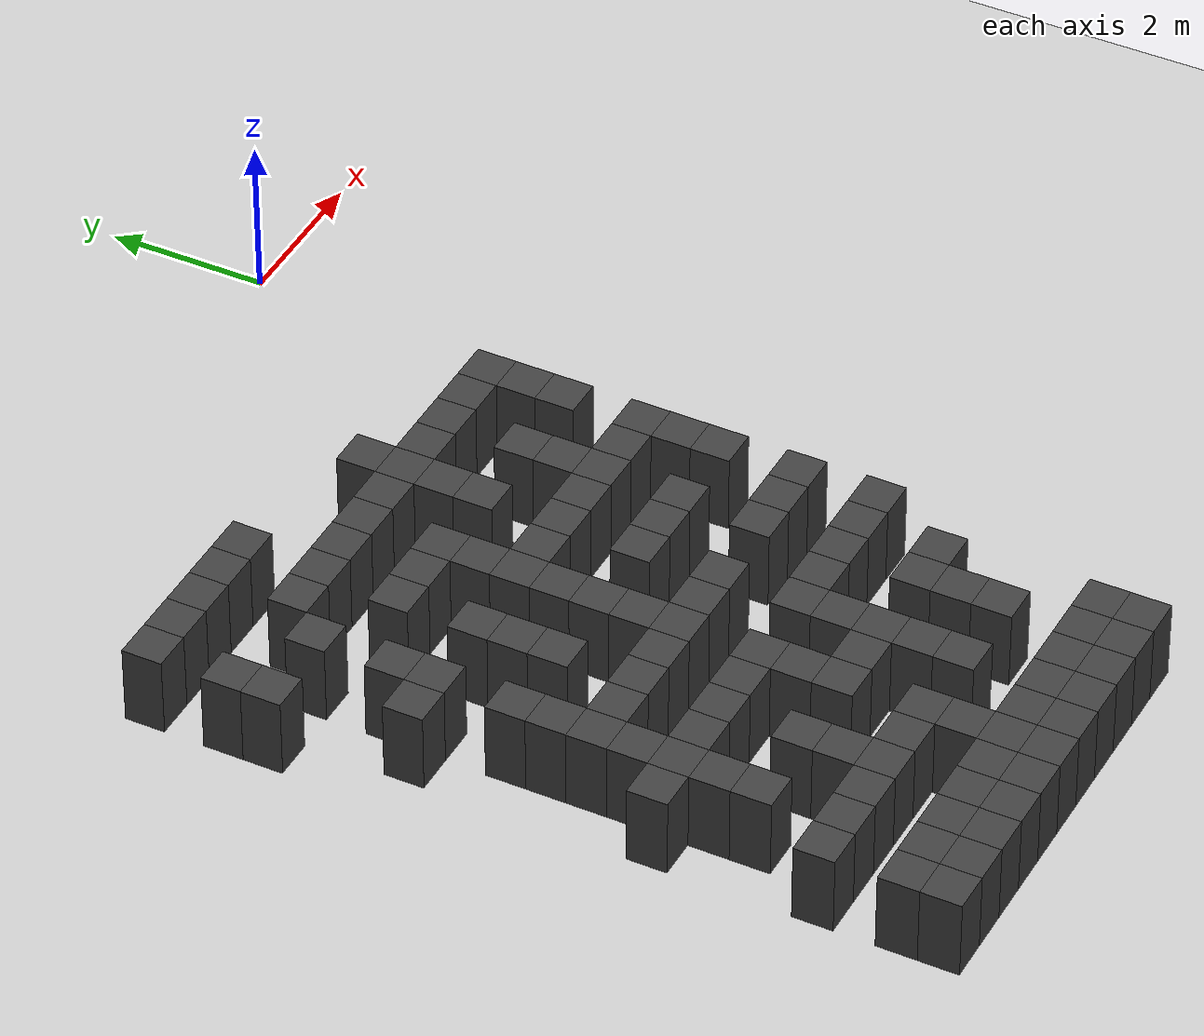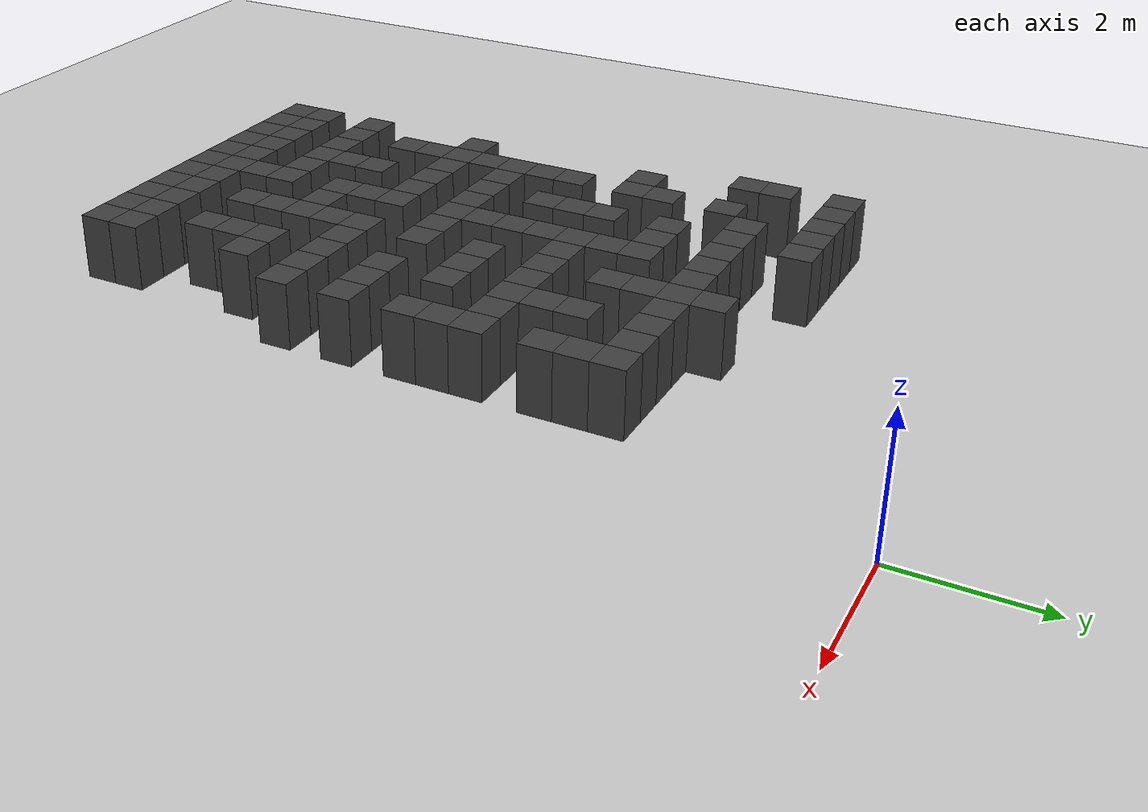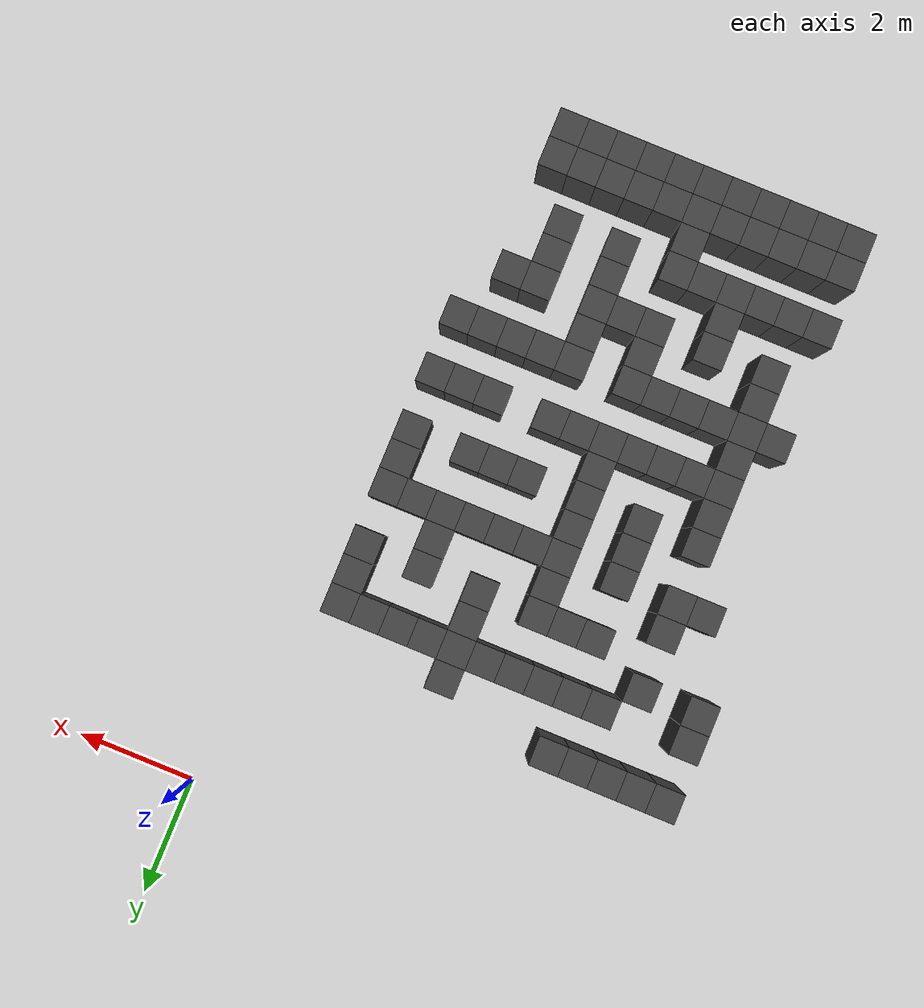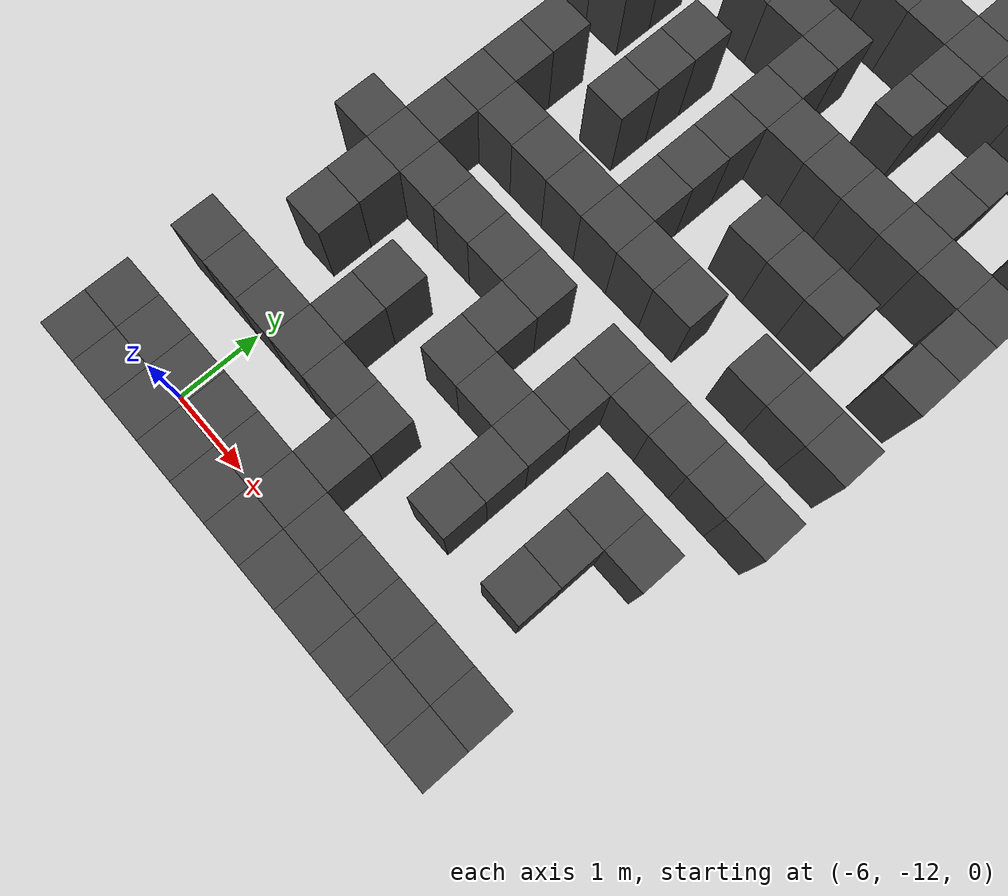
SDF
<sdf version="1.7">
 <world name="map_18505">
  <model name="ground_plane">
   <static>true</static>
   <link name="link">
    <collision name="collision">
     <geometry><plane><normal>0 0 1</normal><size>200 200</size></plane></geometry>
    </collision>
    <visual name="visual">
     <geometry><plane><normal>0 0 1</normal><size>200 200</size></plane></geometry>
     <material><ambient>0.8 0.8 0.8 1</ambient><diffuse>0.8 0.8 0.8 1</diffuse></material>
    </visual>
   </link>
  </model>
  <model name="maze_environment">
   <static>true</static>
   <link name="wall_767">
    <pose>-7.250 -2.750 0.500 0 0 0</pose>
    <collision name="col"><geometry><box><size>0.5 0.5 1.0</size></box></geometry></collision>
    <visual name="vis">
     <geometry><box><size>0.5 0.5 1.0</size></box></geometry>
     <material><ambient>0.15 0.15 0.15 1</ambient><diffuse>0.25 0.25 0.25 1</diffuse></material>
    </visual>
   </link>
   <link name="wall_768">
    <pose>-6.750 -2.750 0.500 0 0 0</pose>
    <collision name="col"><geometry><box><size>0.5 0.5 1.0</size></box></geometry></collision>
    <visual name="vis">
     <geometry><box><size>0.5 0.5 1.0</size></box></geometry>
     <material><ambient>0.15 0.15 0.15 1</ambient><diffuse>0.25 0.25 0.25 1</diffuse></material>
    </visual>
   </link>
   <link name="wall_769">
    <pose>-6.250 -2.750 0.500 0 0 0</pose>
    <collision name="col"><geometry><box><size>0.5 0.5 1.0</size></box></geometry></collision>
    <visual name="vis">
     <geometry><box><size>0.5 0.5 1.0</size></box></geometry>
     <material><ambient>0.15 0.15 0.15 1</ambient><diffuse>0.25 0.25 0.25 1</diffuse></material>
    </visual>
   </link>
   <link name="wall_770">
    <pose>-5.750 -2.750 0.500 0 0 0</pose>
    <collision name="col"><geometry><box><size>0.5 0.5 1.0</size></box></geometry></collision>
    <visual name="vis">
     <geometry><box><size>0.5 0.5 1.0</size></box></geometry>
     <material><ambient>0.15 0.15 0.15 1</ambient><diffuse>0.25 0.25 0.25 1</diffuse></material>
    </visual>
   </link>
   <link name="wall_771">
    <pose>-5.250 -2.750 0.500 0 0 0</pose>
    <collision name="col"><geometry><box><size>0.5 0.5 1.0</size></box></geometry></collision>
    <visual name="vis">
     <geometry><box><size>0.5 0.5 1.0</size></box></geometry>
     <material><ambient>0.15 0.15 0.15 1</ambient><diffuse>0.25 0.25 0.25 1</diffuse></material>
    </visual>
   </link>
   <link name="wall_802">
    <pose>-3.250 -3.250 0.500 0 0 0</pose>
    <collision name="col"><geometry><box><size>0.5 0.5 1.0</size></box></geometry></collision>
    <visual name="vis">
     <geometry><box><size>0.5 0.5 1.0</size></box></geometry>
     <material><ambient>0.15 0.15 0.15 1</ambient><diffuse>0.25 0.25 0.25 1</diffuse></material>
    </visual>
   </link>
   <link name="wall_817">
    <pose>-7.250 -3.750 0.500 0 0 0</pose>
    <collision name="col"><geometry><box><size>0.5 0.5 1.0</size></box></geometry></collision>
    <visual name="vis">
     <geometry><box><size>0.5 0.5 1.0</size></box></geometry>
     <material><ambient>0.15 0.15 0.15 1</ambient><diffuse>0.25 0.25 0.25 1</diffuse></material>
    </visual>
   </link>
   <link name="wall_818">
    <pose>-5.750 -3.750 0.500 0 0 0</pose>
    <collision name="col"><geometry><box><size>0.5 0.5 1.0</size></box></geometry></collision>
    <visual name="vis">
     <geometry><box><size>0.5 0.5 1.0</size></box></geometry>
     <material><ambient>0.15 0.15 0.15 1</ambient><diffuse>0.25 0.25 0.25 1</diffuse></material>
    </visual>
   </link>
   <link name="wall_819">
    <pose>-5.250 -3.750 0.500 0 0 0</pose>
    <collision name="col"><geometry><box><size>0.5 0.5 1.0</size></box></geometry></collision>
    <visual name="vis">
     <geometry><box><size>0.5 0.5 1.0</size></box></geometry>
     <material><ambient>0.15 0.15 0.15 1</ambient><diffuse>0.25 0.25 0.25 1</diffuse></material>
    </visual>
   </link>
   <link name="wall_820">
    <pose>-4.750 -3.750 0.500 0 0 0</pose>
    <collision name="col"><geometry><box><size>0.5 0.5 1.0</size></box></geometry></collision>
    <visual name="vis">
     <geometry><box><size>0.5 0.5 1.0</size></box></geometry>
     <material><ambient>0.15 0.15 0.15 1</ambient><diffuse>0.25 0.25 0.25 1</diffuse></material>
    </visual>
   </link>
   <link name="wall_821">
    <pose>-4.250 -3.750 0.500 0 0 0</pose>
    <collision name="col"><geometry><box><size>0.5 0.5 1.0</size></box></geometry></collision>
    <visual name="vis">
     <geometry><box><size>0.5 0.5 1.0</size></box></geometry>
     <material><ambient>0.15 0.15 0.15 1</ambient><diffuse>0.25 0.25 0.25 1</diffuse></material>
    </visual>
   </link>
   <link name="wall_822">
    <pose>-3.750 -3.750 0.500 0 0 0</pose>
    <collision name="col"><geometry><box><size>0.5 0.5 1.0</size></box></geometry></collision>
    <visual name="vis">
     <geometry><box><size>0.5 0.5 1.0</size></box></geometry>
     <material><ambient>0.15 0.15 0.15 1</ambient><diffuse>0.25 0.25 0.25 1</diffuse></material>
    </visual>
   </link>
   <link name="wall_823">
    <pose>-3.250 -3.750 0.500 0 0 0</pose>
    <collision name="col"><geometry><box><size>0.5 0.5 1.0</size></box></geometry></collision>
    <visual name="vis">
     <geometry><box><size>0.5 0.5 1.0</size></box></geometry>
     <material><ambient>0.15 0.15 0.15 1</ambient><diffuse>0.25 0.25 0.25 1</diffuse></material>
    </visual>
   </link>
   <link name="wall_824">
    <pose>-2.750 -3.750 0.500 0 0 0</pose>
    <collision name="col"><geometry><box><size>0.5 0.5 1.0</size></box></geometry></collision>
    <visual name="vis">
     <geometry><box><size>0.5 0.5 1.0</size></box></geometry>
     <material><ambient>0.15 0.15 0.15 1</ambient><diffuse>0.25 0.25 0.25 1</diffuse></material>
    </visual>
   </link>
   <link name="wall_825">
    <pose>-2.250 -3.750 0.500 0 0 0</pose>
    <collision name="col"><geometry><box><size>0.5 0.5 1.0</size></box></geometry></collision>
    <visual name="vis">
     <geometry><box><size>0.5 0.5 1.0</size></box></geometry>
     <material><ambient>0.15 0.15 0.15 1</ambient><diffuse>0.25 0.25 0.25 1</diffuse></material>
    </visual>
   </link>
   <link name="wall_826">
    <pose>-1.750 -3.750 0.500 0 0 0</pose>
    <collision name="col"><geometry><box><size>0.5 0.5 1.0</size></box></geometry></collision>
    <visual name="vis">
     <geometry><box><size>0.5 0.5 1.0</size></box></geometry>
     <material><ambient>0.15 0.15 0.15 1</ambient><diffuse>0.25 0.25 0.25 1</diffuse></material>
    </visual>
   </link>
   <link name="wall_827">
    <pose>-1.250 -3.750 0.500 0 0 0</pose>
    <collision name="col"><geometry><box><size>0.5 0.5 1.0</size></box></geometry></collision>
    <visual name="vis">
     <geometry><box><size>0.5 0.5 1.0</size></box></geometry>
     <material><ambient>0.15 0.15 0.15 1</ambient><diffuse>0.25 0.25 0.25 1</diffuse></material>
    </visual>
   </link>
   <link name="wall_849">
    <pose>-7.250 -4.250 0.500 0 0 0</pose>
    <collision name="col"><geometry><box><size>0.5 0.5 1.0</size></box></geometry></collision>
    <visual name="vis">
     <geometry><box><size>0.5 0.5 1.0</size></box></geometry>
     <material><ambient>0.15 0.15 0.15 1</ambient><diffuse>0.25 0.25 0.25 1</diffuse></material>
    </visual>
   </link>
   <link name="wall_850">
    <pose>-6.250 -4.250 0.500 0 0 0</pose>
    <collision name="col"><geometry><box><size>0.5 0.5 1.0</size></box></geometry></collision>
    <visual name="vis">
     <geometry><box><size>0.5 0.5 1.0</size></box></geometry>
     <material><ambient>0.15 0.15 0.15 1</ambient><diffuse>0.25 0.25 0.25 1</diffuse></material>
    </visual>
   </link>
   <link name="wall_851">
    <pose>-3.250 -4.250 0.500 0 0 0</pose>
    <collision name="col"><geometry><box><size>0.5 0.5 1.0</size></box></geometry></collision>
    <visual name="vis">
     <geometry><box><size>0.5 0.5 1.0</size></box></geometry>
     <material><ambient>0.15 0.15 0.15 1</ambient><diffuse>0.25 0.25 0.25 1</diffuse></material>
    </visual>
   </link>
   <link name="wall_852">
    <pose>-1.250 -4.250 0.500 0 0 0</pose>
    <collision name="col"><geometry><box><size>0.5 0.5 1.0</size></box></geometry></collision>
    <visual name="vis">
     <geometry><box><size>0.5 0.5 1.0</size></box></geometry>
     <material><ambient>0.15 0.15 0.15 1</ambient><diffuse>0.25 0.25 0.25 1</diffuse></material>
    </visual>
   </link>
   <link name="wall_870">
    <pose>-5.250 -4.750 0.500 0 0 0</pose>
    <collision name="col"><geometry><box><size>0.5 0.5 1.0</size></box></geometry></collision>
    <visual name="vis">
     <geometry><box><size>0.5 0.5 1.0</size></box></geometry>
     <material><ambient>0.15 0.15 0.15 1</ambient><diffuse>0.25 0.25 0.25 1</diffuse></material>
    </visual>
   </link>
   <link name="wall_871">
    <pose>-4.750 -4.750 0.500 0 0 0</pose>
    <collision name="col"><geometry><box><size>0.5 0.5 1.0</size></box></geometry></collision>
    <visual name="vis">
     <geometry><box><size>0.5 0.5 1.0</size></box></geometry>
     <material><ambient>0.15 0.15 0.15 1</ambient><diffuse>0.25 0.25 0.25 1</diffuse></material>
    </visual>
   </link>
   <link name="wall_872">
    <pose>-4.250 -4.750 0.500 0 0 0</pose>
    <collision name="col"><geometry><box><size>0.5 0.5 1.0</size></box></geometry></collision>
    <visual name="vis">
     <geometry><box><size>0.5 0.5 1.0</size></box></geometry>
     <material><ambient>0.15 0.15 0.15 1</ambient><diffuse>0.25 0.25 0.25 1</diffuse></material>
    </visual>
   </link>
   <link name="wall_873">
    <pose>-3.250 -4.750 0.500 0 0 0</pose>
    <collision name="col"><geometry><box><size>0.5 0.5 1.0</size></box></geometry></collision>
    <visual name="vis">
     <geometry><box><size>0.5 0.5 1.0</size></box></geometry>
     <material><ambient>0.15 0.15 0.15 1</ambient><diffuse>0.25 0.25 0.25 1</diffuse></material>
    </visual>
   </link>
   <link name="wall_874">
    <pose>-2.250 -4.750 0.500 0 0 0</pose>
    <collision name="col"><geometry><box><size>0.5 0.5 1.0</size></box></geometry></collision>
    <visual name="vis">
     <geometry><box><size>0.5 0.5 1.0</size></box></geometry>
     <material><ambient>0.15 0.15 0.15 1</ambient><diffuse>0.25 0.25 0.25 1</diffuse></material>
    </visual>
   </link>
   <link name="wall_875">
    <pose>-1.250 -4.750 0.500 0 0 0</pose>
    <collision name="col"><geometry><box><size>0.5 0.5 1.0</size></box></geometry></collision>
    <visual name="vis">
     <geometry><box><size>0.5 0.5 1.0</size></box></geometry>
     <material><ambient>0.15 0.15 0.15 1</ambient><diffuse>0.25 0.25 0.25 1</diffuse></material>
    </visual>
   </link>
   <link name="wall_897">
    <pose>-6.250 -5.250 0.500 0 0 0</pose>
    <collision name="col"><geometry><box><size>0.5 0.5 1.0</size></box></geometry></collision>
    <visual name="vis">
     <geometry><box><size>0.5 0.5 1.0</size></box></geometry>
     <material><ambient>0.15 0.15 0.15 1</ambient><diffuse>0.25 0.25 0.25 1</diffuse></material>
    </visual>
   </link>
   <link name="wall_898">
    <pose>-4.250 -5.250 0.500 0 0 0</pose>
    <collision name="col"><geometry><box><size>0.5 0.5 1.0</size></box></geometry></collision>
    <visual name="vis">
     <geometry><box><size>0.5 0.5 1.0</size></box></geometry>
     <material><ambient>0.15 0.15 0.15 1</ambient><diffuse>0.25 0.25 0.25 1</diffuse></material>
    </visual>
   </link>
   <link name="wall_899">
    <pose>-2.250 -5.250 0.500 0 0 0</pose>
    <collision name="col"><geometry><box><size>0.5 0.5 1.0</size></box></geometry></collision>
    <visual name="vis">
     <geometry><box><size>0.5 0.5 1.0</size></box></geometry>
     <material><ambient>0.15 0.15 0.15 1</ambient><diffuse>0.25 0.25 0.25 1</diffuse></material>
    </visual>
   </link>
   <link name="wall_918">
    <pose>-6.750 -5.750 0.500 0 0 0</pose>
    <collision name="col"><geometry><box><size>0.5 0.5 1.0</size></box></geometry></collision>
    <visual name="vis">
     <geometry><box><size>0.5 0.5 1.0</size></box></geometry>
     <material><ambient>0.15 0.15 0.15 1</ambient><diffuse>0.25 0.25 0.25 1</diffuse></material>
    </visual>
   </link>
   <link name="wall_919">
    <pose>-6.250 -5.750 0.500 0 0 0</pose>
    <collision name="col"><geometry><box><size>0.5 0.5 1.0</size></box></geometry></collision>
    <visual name="vis">
     <geometry><box><size>0.5 0.5 1.0</size></box></geometry>
     <material><ambient>0.15 0.15 0.15 1</ambient><diffuse>0.25 0.25 0.25 1</diffuse></material>
    </visual>
   </link>
   <link name="wall_920">
    <pose>-5.250 -5.750 0.500 0 0 0</pose>
    <collision name="col"><geometry><box><size>0.5 0.5 1.0</size></box></geometry></collision>
    <visual name="vis">
     <geometry><box><size>0.5 0.5 1.0</size></box></geometry>
     <material><ambient>0.15 0.15 0.15 1</ambient><diffuse>0.25 0.25 0.25 1</diffuse></material>
    </visual>
   </link>
   <link name="wall_921">
    <pose>-4.250 -5.750 0.500 0 0 0</pose>
    <collision name="col"><geometry><box><size>0.5 0.5 1.0</size></box></geometry></collision>
    <visual name="vis">
     <geometry><box><size>0.5 0.5 1.0</size></box></geometry>
     <material><ambient>0.15 0.15 0.15 1</ambient><diffuse>0.25 0.25 0.25 1</diffuse></material>
    </visual>
   </link>
   <link name="wall_922">
    <pose>-3.750 -5.750 0.500 0 0 0</pose>
    <collision name="col"><geometry><box><size>0.5 0.5 1.0</size></box></geometry></collision>
    <visual name="vis">
     <geometry><box><size>0.5 0.5 1.0</size></box></geometry>
     <material><ambient>0.15 0.15 0.15 1</ambient><diffuse>0.25 0.25 0.25 1</diffuse></material>
    </visual>
   </link>
   <link name="wall_923">
    <pose>-3.250 -5.750 0.500 0 0 0</pose>
    <collision name="col"><geometry><box><size>0.5 0.5 1.0</size></box></geometry></collision>
    <visual name="vis">
     <geometry><box><size>0.5 0.5 1.0</size></box></geometry>
     <material><ambient>0.15 0.15 0.15 1</ambient><diffuse>0.25 0.25 0.25 1</diffuse></material>
    </visual>
   </link>
   <link name="wall_924">
    <pose>-2.750 -5.750 0.500 0 0 0</pose>
    <collision name="col"><geometry><box><size>0.5 0.5 1.0</size></box></geometry></collision>
    <visual name="vis">
     <geometry><box><size>0.5 0.5 1.0</size></box></geometry>
     <material><ambient>0.15 0.15 0.15 1</ambient><diffuse>0.25 0.25 0.25 1</diffuse></material>
    </visual>
   </link>
   <link name="wall_925">
    <pose>-2.250 -5.750 0.500 0 0 0</pose>
    <collision name="col"><geometry><box><size>0.5 0.5 1.0</size></box></geometry></collision>
    <visual name="vis">
     <geometry><box><size>0.5 0.5 1.0</size></box></geometry>
     <material><ambient>0.15 0.15 0.15 1</ambient><diffuse>0.25 0.25 0.25 1</diffuse></material>
    </visual>
   </link>
   <link name="wall_926">
    <pose>-1.750 -5.750 0.500 0 0 0</pose>
    <collision name="col"><geometry><box><size>0.5 0.5 1.0</size></box></geometry></collision>
    <visual name="vis">
     <geometry><box><size>0.5 0.5 1.0</size></box></geometry>
     <material><ambient>0.15 0.15 0.15 1</ambient><diffuse>0.25 0.25 0.25 1</diffuse></material>
    </visual>
   </link>
   <link name="wall_927">
    <pose>-1.250 -5.750 0.500 0 0 0</pose>
    <collision name="col"><geometry><box><size>0.5 0.5 1.0</size></box></geometry></collision>
    <visual name="vis">
     <geometry><box><size>0.5 0.5 1.0</size></box></geometry>
     <material><ambient>0.15 0.15 0.15 1</ambient><diffuse>0.25 0.25 0.25 1</diffuse></material>
    </visual>
   </link>
   <link name="wall_948">
    <pose>-5.250 -6.250 0.500 0 0 0</pose>
    <collision name="col"><geometry><box><size>0.5 0.5 1.0</size></box></geometry></collision>
    <visual name="vis">
     <geometry><box><size>0.5 0.5 1.0</size></box></geometry>
     <material><ambient>0.15 0.15 0.15 1</ambient><diffuse>0.25 0.25 0.25 1</diffuse></material>
    </visual>
   </link>
   <link name="wall_949">
    <pose>-4.250 -6.250 0.500 0 0 0</pose>
    <collision name="col"><geometry><box><size>0.5 0.5 1.0</size></box></geometry></collision>
    <visual name="vis">
     <geometry><box><size>0.5 0.5 1.0</size></box></geometry>
     <material><ambient>0.15 0.15 0.15 1</ambient><diffuse>0.25 0.25 0.25 1</diffuse></material>
    </visual>
   </link>
   <link name="wall_950">
    <pose>-1.250 -6.250 0.500 0 0 0</pose>
    <collision name="col"><geometry><box><size>0.5 0.5 1.0</size></box></geometry></collision>
    <visual name="vis">
     <geometry><box><size>0.5 0.5 1.0</size></box></geometry>
     <material><ambient>0.15 0.15 0.15 1</ambient><diffuse>0.25 0.25 0.25 1</diffuse></material>
    </visual>
   </link>
   <link name="wall_966">
    <pose>-6.250 -6.750 0.500 0 0 0</pose>
    <collision name="col"><geometry><box><size>0.5 0.5 1.0</size></box></geometry></collision>
    <visual name="vis">
     <geometry><box><size>0.5 0.5 1.0</size></box></geometry>
     <material><ambient>0.15 0.15 0.15 1</ambient><diffuse>0.25 0.25 0.25 1</diffuse></material>
    </visual>
   </link>
   <link name="wall_967">
    <pose>-5.250 -6.750 0.500 0 0 0</pose>
    <collision name="col"><geometry><box><size>0.5 0.5 1.0</size></box></geometry></collision>
    <visual name="vis">
     <geometry><box><size>0.5 0.5 1.0</size></box></geometry>
     <material><ambient>0.15 0.15 0.15 1</ambient><diffuse>0.25 0.25 0.25 1</diffuse></material>
    </visual>
   </link>
   <link name="wall_968">
    <pose>-4.250 -6.750 0.500 0 0 0</pose>
    <collision name="col"><geometry><box><size>0.5 0.5 1.0</size></box></geometry></collision>
    <visual name="vis">
     <geometry><box><size>0.5 0.5 1.0</size></box></geometry>
     <material><ambient>0.15 0.15 0.15 1</ambient><diffuse>0.25 0.25 0.25 1</diffuse></material>
    </visual>
   </link>
   <link name="wall_969">
    <pose>-3.250 -6.750 0.500 0 0 0</pose>
    <collision name="col"><geometry><box><size>0.5 0.5 1.0</size></box></geometry></collision>
    <visual name="vis">
     <geometry><box><size>0.5 0.5 1.0</size></box></geometry>
     <material><ambient>0.15 0.15 0.15 1</ambient><diffuse>0.25 0.25 0.25 1</diffuse></material>
    </visual>
   </link>
   <link name="wall_970">
    <pose>-2.750 -6.750 0.500 0 0 0</pose>
    <collision name="col"><geometry><box><size>0.5 0.5 1.0</size></box></geometry></collision>
    <visual name="vis">
     <geometry><box><size>0.5 0.5 1.0</size></box></geometry>
     <material><ambient>0.15 0.15 0.15 1</ambient><diffuse>0.25 0.25 0.25 1</diffuse></material>
    </visual>
   </link>
   <link name="wall_971">
    <pose>-2.250 -6.750 0.500 0 0 0</pose>
    <collision name="col"><geometry><box><size>0.5 0.5 1.0</size></box></geometry></collision>
    <visual name="vis">
     <geometry><box><size>0.5 0.5 1.0</size></box></geometry>
     <material><ambient>0.15 0.15 0.15 1</ambient><diffuse>0.25 0.25 0.25 1</diffuse></material>
    </visual>
   </link>
   <link name="wall_972">
    <pose>-1.250 -6.750 0.500 0 0 0</pose>
    <collision name="col"><geometry><box><size>0.5 0.5 1.0</size></box></geometry></collision>
    <visual name="vis">
     <geometry><box><size>0.5 0.5 1.0</size></box></geometry>
     <material><ambient>0.15 0.15 0.15 1</ambient><diffuse>0.25 0.25 0.25 1</diffuse></material>
    </visual>
   </link>
   <link name="wall_995">
    <pose>-6.250 -7.250 0.500 0 0 0</pose>
    <collision name="col"><geometry><box><size>0.5 0.5 1.0</size></box></geometry></collision>
    <visual name="vis">
     <geometry><box><size>0.5 0.5 1.0</size></box></geometry>
     <material><ambient>0.15 0.15 0.15 1</ambient><diffuse>0.25 0.25 0.25 1</diffuse></material>
    </visual>
   </link>
   <link name="wall_996">
    <pose>-4.250 -7.250 0.500 0 0 0</pose>
    <collision name="col"><geometry><box><size>0.5 0.5 1.0</size></box></geometry></collision>
    <visual name="vis">
     <geometry><box><size>0.5 0.5 1.0</size></box></geometry>
     <material><ambient>0.15 0.15 0.15 1</ambient><diffuse>0.25 0.25 0.25 1</diffuse></material>
    </visual>
   </link>
   <link name="wall_1011">
    <pose>-6.250 -7.750 0.500 0 0 0</pose>
    <collision name="col"><geometry><box><size>0.5 0.5 1.0</size></box></geometry></collision>
    <visual name="vis">
     <geometry><box><size>0.5 0.5 1.0</size></box></geometry>
     <material><ambient>0.15 0.15 0.15 1</ambient><diffuse>0.25 0.25 0.25 1</diffuse></material>
    </visual>
   </link>
   <link name="wall_1012">
    <pose>-5.750 -7.750 0.500 0 0 0</pose>
    <collision name="col"><geometry><box><size>0.5 0.5 1.0</size></box></geometry></collision>
    <visual name="vis">
     <geometry><box><size>0.5 0.5 1.0</size></box></geometry>
     <material><ambient>0.15 0.15 0.15 1</ambient><diffuse>0.25 0.25 0.25 1</diffuse></material>
    </visual>
   </link>
   <link name="wall_1013">
    <pose>-5.250 -7.750 0.500 0 0 0</pose>
    <collision name="col"><geometry><box><size>0.5 0.5 1.0</size></box></geometry></collision>
    <visual name="vis">
     <geometry><box><size>0.5 0.5 1.0</size></box></geometry>
     <material><ambient>0.15 0.15 0.15 1</ambient><diffuse>0.25 0.25 0.25 1</diffuse></material>
    </visual>
   </link>
   <link name="wall_1014">
    <pose>-4.750 -7.750 0.500 0 0 0</pose>
    <collision name="col"><geometry><box><size>0.5 0.5 1.0</size></box></geometry></collision>
    <visual name="vis">
     <geometry><box><size>0.5 0.5 1.0</size></box></geometry>
     <material><ambient>0.15 0.15 0.15 1</ambient><diffuse>0.25 0.25 0.25 1</diffuse></material>
    </visual>
   </link>
   <link name="wall_1015">
    <pose>-4.250 -7.750 0.500 0 0 0</pose>
    <collision name="col"><geometry><box><size>0.5 0.5 1.0</size></box></geometry></collision>
    <visual name="vis">
     <geometry><box><size>0.5 0.5 1.0</size></box></geometry>
     <material><ambient>0.15 0.15 0.15 1</ambient><diffuse>0.25 0.25 0.25 1</diffuse></material>
    </visual>
   </link>
   <link name="wall_1016">
    <pose>-3.750 -7.750 0.500 0 0 0</pose>
    <collision name="col"><geometry><box><size>0.5 0.5 1.0</size></box></geometry></collision>
    <visual name="vis">
     <geometry><box><size>0.5 0.5 1.0</size></box></geometry>
     <material><ambient>0.15 0.15 0.15 1</ambient><diffuse>0.25 0.25 0.25 1</diffuse></material>
    </visual>
   </link>
   <link name="wall_1017">
    <pose>-3.250 -7.750 0.500 0 0 0</pose>
    <collision name="col"><geometry><box><size>0.5 0.5 1.0</size></box></geometry></collision>
    <visual name="vis">
     <geometry><box><size>0.5 0.5 1.0</size></box></geometry>
     <material><ambient>0.15 0.15 0.15 1</ambient><diffuse>0.25 0.25 0.25 1</diffuse></material>
    </visual>
   </link>
   <link name="wall_1018">
    <pose>-2.250 -7.750 0.500 0 0 0</pose>
    <collision name="col"><geometry><box><size>0.5 0.5 1.0</size></box></geometry></collision>
    <visual name="vis">
     <geometry><box><size>0.5 0.5 1.0</size></box></geometry>
     <material><ambient>0.15 0.15 0.15 1</ambient><diffuse>0.25 0.25 0.25 1</diffuse></material>
    </visual>
   </link>
   <link name="wall_1019">
    <pose>-1.750 -7.750 0.500 0 0 0</pose>
    <collision name="col"><geometry><box><size>0.5 0.5 1.0</size></box></geometry></collision>
    <visual name="vis">
     <geometry><box><size>0.5 0.5 1.0</size></box></geometry>
     <material><ambient>0.15 0.15 0.15 1</ambient><diffuse>0.25 0.25 0.25 1</diffuse></material>
    </visual>
   </link>
   <link name="wall_1020">
    <pose>-1.250 -7.750 0.500 0 0 0</pose>
    <collision name="col"><geometry><box><size>0.5 0.5 1.0</size></box></geometry></collision>
    <visual name="vis">
     <geometry><box><size>0.5 0.5 1.0</size></box></geometry>
     <material><ambient>0.15 0.15 0.15 1</ambient><diffuse>0.25 0.25 0.25 1</diffuse></material>
    </visual>
   </link>
   <link name="wall_1046">
    <pose>-6.250 -8.250 0.500 0 0 0</pose>
    <collision name="col"><geometry><box><size>0.5 0.5 1.0</size></box></geometry></collision>
    <visual name="vis">
     <geometry><box><size>0.5 0.5 1.0</size></box></geometry>
     <material><ambient>0.15 0.15 0.15 1</ambient><diffuse>0.25 0.25 0.25 1</diffuse></material>
    </visual>
   </link>
   <link name="wall_1061">
    <pose>-6.750 -8.750 0.500 0 0 0</pose>
    <collision name="col"><geometry><box><size>0.5 0.5 1.0</size></box></geometry></collision>
    <visual name="vis">
     <geometry><box><size>0.5 0.5 1.0</size></box></geometry>
     <material><ambient>0.15 0.15 0.15 1</ambient><diffuse>0.25 0.25 0.25 1</diffuse></material>
    </visual>
   </link>
   <link name="wall_1062">
    <pose>-6.250 -8.750 0.500 0 0 0</pose>
    <collision name="col"><geometry><box><size>0.5 0.5 1.0</size></box></geometry></collision>
    <visual name="vis">
     <geometry><box><size>0.5 0.5 1.0</size></box></geometry>
     <material><ambient>0.15 0.15 0.15 1</ambient><diffuse>0.25 0.25 0.25 1</diffuse></material>
    </visual>
   </link>
   <link name="wall_1063">
    <pose>-5.750 -8.750 0.500 0 0 0</pose>
    <collision name="col"><geometry><box><size>0.5 0.5 1.0</size></box></geometry></collision>
    <visual name="vis">
     <geometry><box><size>0.5 0.5 1.0</size></box></geometry>
     <material><ambient>0.15 0.15 0.15 1</ambient><diffuse>0.25 0.25 0.25 1</diffuse></material>
    </visual>
   </link>
   <link name="wall_1064">
    <pose>-5.250 -8.750 0.500 0 0 0</pose>
    <collision name="col"><geometry><box><size>0.5 0.5 1.0</size></box></geometry></collision>
    <visual name="vis">
     <geometry><box><size>0.5 0.5 1.0</size></box></geometry>
     <material><ambient>0.15 0.15 0.15 1</ambient><diffuse>0.25 0.25 0.25 1</diffuse></material>
    </visual>
   </link>
   <link name="wall_1065">
    <pose>-4.750 -8.750 0.500 0 0 0</pose>
    <collision name="col"><geometry><box><size>0.5 0.5 1.0</size></box></geometry></collision>
    <visual name="vis">
     <geometry><box><size>0.5 0.5 1.0</size></box></geometry>
     <material><ambient>0.15 0.15 0.15 1</ambient><diffuse>0.25 0.25 0.25 1</diffuse></material>
    </visual>
   </link>
   <link name="wall_1066">
    <pose>-4.250 -8.750 0.500 0 0 0</pose>
    <collision name="col"><geometry><box><size>0.5 0.5 1.0</size></box></geometry></collision>
    <visual name="vis">
     <geometry><box><size>0.5 0.5 1.0</size></box></geometry>
     <material><ambient>0.15 0.15 0.15 1</ambient><diffuse>0.25 0.25 0.25 1</diffuse></material>
    </visual>
   </link>
   <link name="wall_1067">
    <pose>-3.250 -8.750 0.500 0 0 0</pose>
    <collision name="col"><geometry><box><size>0.5 0.5 1.0</size></box></geometry></collision>
    <visual name="vis">
     <geometry><box><size>0.5 0.5 1.0</size></box></geometry>
     <material><ambient>0.15 0.15 0.15 1</ambient><diffuse>0.25 0.25 0.25 1</diffuse></material>
    </visual>
   </link>
   <link name="wall_1068">
    <pose>-2.750 -8.750 0.500 0 0 0</pose>
    <collision name="col"><geometry><box><size>0.5 0.5 1.0</size></box></geometry></collision>
    <visual name="vis">
     <geometry><box><size>0.5 0.5 1.0</size></box></geometry>
     <material><ambient>0.15 0.15 0.15 1</ambient><diffuse>0.25 0.25 0.25 1</diffuse></material>
    </visual>
   </link>
   <link name="wall_1069">
    <pose>-2.250 -8.750 0.500 0 0 0</pose>
    <collision name="col"><geometry><box><size>0.5 0.5 1.0</size></box></geometry></collision>
    <visual name="vis">
     <geometry><box><size>0.5 0.5 1.0</size></box></geometry>
     <material><ambient>0.15 0.15 0.15 1</ambient><diffuse>0.25 0.25 0.25 1</diffuse></material>
    </visual>
   </link>
   <link name="wall_1070">
    <pose>-1.750 -8.750 0.500 0 0 0</pose>
    <collision name="col"><geometry><box><size>0.5 0.5 1.0</size></box></geometry></collision>
    <visual name="vis">
     <geometry><box><size>0.5 0.5 1.0</size></box></geometry>
     <material><ambient>0.15 0.15 0.15 1</ambient><diffuse>0.25 0.25 0.25 1</diffuse></material>
    </visual>
   </link>
   <link name="wall_1071">
    <pose>-1.250 -8.750 0.500 0 0 0</pose>
    <collision name="col"><geometry><box><size>0.5 0.5 1.0</size></box></geometry></collision>
    <visual name="vis">
     <geometry><box><size>0.5 0.5 1.0</size></box></geometry>
     <material><ambient>0.15 0.15 0.15 1</ambient><diffuse>0.25 0.25 0.25 1</diffuse></material>
    </visual>
   </link>
   <link name="wall_1096">
    <pose>-6.250 -9.250 0.500 0 0 0</pose>
    <collision name="col"><geometry><box><size>0.5 0.5 1.0</size></box></geometry></collision>
    <visual name="vis">
     <geometry><box><size>0.5 0.5 1.0</size></box></geometry>
     <material><ambient>0.15 0.15 0.15 1</ambient><diffuse>0.25 0.25 0.25 1</diffuse></material>
    </visual>
   </link>
   <link name="wall_1097">
    <pose>-4.250 -9.250 0.500 0 0 0</pose>
    <collision name="col"><geometry><box><size>0.5 0.5 1.0</size></box></geometry></collision>
    <visual name="vis">
     <geometry><box><size>0.5 0.5 1.0</size></box></geometry>
     <material><ambient>0.15 0.15 0.15 1</ambient><diffuse>0.25 0.25 0.25 1</diffuse></material>
    </visual>
   </link>
   <link name="wall_1098">
    <pose>-3.250 -9.250 0.500 0 0 0</pose>
    <collision name="col"><geometry><box><size>0.5 0.5 1.0</size></box></geometry></collision>
    <visual name="vis">
     <geometry><box><size>0.5 0.5 1.0</size></box></geometry>
     <material><ambient>0.15 0.15 0.15 1</ambient><diffuse>0.25 0.25 0.25 1</diffuse></material>
    </visual>
   </link>
   <link name="wall_1113">
    <pose>-6.250 -9.750 0.500 0 0 0</pose>
    <collision name="col"><geometry><box><size>0.5 0.5 1.0</size></box></geometry></collision>
    <visual name="vis">
     <geometry><box><size>0.5 0.5 1.0</size></box></geometry>
     <material><ambient>0.15 0.15 0.15 1</ambient><diffuse>0.25 0.25 0.25 1</diffuse></material>
    </visual>
   </link>
   <link name="wall_1114">
    <pose>-5.250 -9.750 0.500 0 0 0</pose>
    <collision name="col"><geometry><box><size>0.5 0.5 1.0</size></box></geometry></collision>
    <visual name="vis">
     <geometry><box><size>0.5 0.5 1.0</size></box></geometry>
     <material><ambient>0.15 0.15 0.15 1</ambient><diffuse>0.25 0.25 0.25 1</diffuse></material>
    </visual>
   </link>
   <link name="wall_1115">
    <pose>-4.250 -9.750 0.500 0 0 0</pose>
    <collision name="col"><geometry><box><size>0.5 0.5 1.0</size></box></geometry></collision>
    <visual name="vis">
     <geometry><box><size>0.5 0.5 1.0</size></box></geometry>
     <material><ambient>0.15 0.15 0.15 1</ambient><diffuse>0.25 0.25 0.25 1</diffuse></material>
    </visual>
   </link>
   <link name="wall_1116">
    <pose>-3.750 -9.750 0.500 0 0 0</pose>
    <collision name="col"><geometry><box><size>0.5 0.5 1.0</size></box></geometry></collision>
    <visual name="vis">
     <geometry><box><size>0.5 0.5 1.0</size></box></geometry>
     <material><ambient>0.15 0.15 0.15 1</ambient><diffuse>0.25 0.25 0.25 1</diffuse></material>
    </visual>
   </link>
   <link name="wall_1117">
    <pose>-3.250 -9.750 0.500 0 0 0</pose>
    <collision name="col"><geometry><box><size>0.5 0.5 1.0</size></box></geometry></collision>
    <visual name="vis">
     <geometry><box><size>0.5 0.5 1.0</size></box></geometry>
     <material><ambient>0.15 0.15 0.15 1</ambient><diffuse>0.25 0.25 0.25 1</diffuse></material>
    </visual>
   </link>
   <link name="wall_1118">
    <pose>-2.250 -9.750 0.500 0 0 0</pose>
    <collision name="col"><geometry><box><size>0.5 0.5 1.0</size></box></geometry></collision>
    <visual name="vis">
     <geometry><box><size>0.5 0.5 1.0</size></box></geometry>
     <material><ambient>0.15 0.15 0.15 1</ambient><diffuse>0.25 0.25 0.25 1</diffuse></material>
    </visual>
   </link>
   <link name="wall_1119">
    <pose>-1.750 -9.750 0.500 0 0 0</pose>
    <collision name="col"><geometry><box><size>0.5 0.5 1.0</size></box></geometry></collision>
    <visual name="vis">
     <geometry><box><size>0.5 0.5 1.0</size></box></geometry>
     <material><ambient>0.15 0.15 0.15 1</ambient><diffuse>0.25 0.25 0.25 1</diffuse></material>
    </visual>
   </link>
   <link name="wall_1147">
    <pose>-5.250 -10.250 0.500 0 0 0</pose>
    <collision name="col"><geometry><box><size>0.5 0.5 1.0</size></box></geometry></collision>
    <visual name="vis">
     <geometry><box><size>0.5 0.5 1.0</size></box></geometry>
     <material><ambient>0.15 0.15 0.15 1</ambient><diffuse>0.25 0.25 0.25 1</diffuse></material>
    </visual>
   </link>
   <link name="wall_1148">
    <pose>-3.250 -10.250 0.500 0 0 0</pose>
    <collision name="col"><geometry><box><size>0.5 0.5 1.0</size></box></geometry></collision>
    <visual name="vis">
     <geometry><box><size>0.5 0.5 1.0</size></box></geometry>
     <material><ambient>0.15 0.15 0.15 1</ambient><diffuse>0.25 0.25 0.25 1</diffuse></material>
    </visual>
   </link>
   <link name="wall_1149">
    <pose>-2.250 -10.250 0.500 0 0 0</pose>
    <collision name="col"><geometry><box><size>0.5 0.5 1.0</size></box></geometry></collision>
    <visual name="vis">
     <geometry><box><size>0.5 0.5 1.0</size></box></geometry>
     <material><ambient>0.15 0.15 0.15 1</ambient><diffuse>0.25 0.25 0.25 1</diffuse></material>
    </visual>
   </link>
   <link name="wall_1165">
    <pose>-6.750 -10.750 0.500 0 0 0</pose>
    <collision name="col"><geometry><box><size>0.5 0.5 1.0</size></box></geometry></collision>
    <visual name="vis">
     <geometry><box><size>0.5 0.5 1.0</size></box></geometry>
     <material><ambient>0.15 0.15 0.15 1</ambient><diffuse>0.25 0.25 0.25 1</diffuse></material>
    </visual>
   </link>
   <link name="wall_1166">
    <pose>-6.250 -10.750 0.500 0 0 0</pose>
    <collision name="col"><geometry><box><size>0.5 0.5 1.0</size></box></geometry></collision>
    <visual name="vis">
     <geometry><box><size>0.5 0.5 1.0</size></box></geometry>
     <material><ambient>0.15 0.15 0.15 1</ambient><diffuse>0.25 0.25 0.25 1</diffuse></material>
    </visual>
   </link>
   <link name="wall_1167">
    <pose>-5.750 -10.750 0.500 0 0 0</pose>
    <collision name="col"><geometry><box><size>0.5 0.5 1.0</size></box></geometry></collision>
    <visual name="vis">
     <geometry><box><size>0.5 0.5 1.0</size></box></geometry>
     <material><ambient>0.15 0.15 0.15 1</ambient><diffuse>0.25 0.25 0.25 1</diffuse></material>
    </visual>
   </link>
   <link name="wall_1168">
    <pose>-5.250 -10.750 0.500 0 0 0</pose>
    <collision name="col"><geometry><box><size>0.5 0.5 1.0</size></box></geometry></collision>
    <visual name="vis">
     <geometry><box><size>0.5 0.5 1.0</size></box></geometry>
     <material><ambient>0.15 0.15 0.15 1</ambient><diffuse>0.25 0.25 0.25 1</diffuse></material>
    </visual>
   </link>
   <link name="wall_1169">
    <pose>-4.750 -10.750 0.500 0 0 0</pose>
    <collision name="col"><geometry><box><size>0.5 0.5 1.0</size></box></geometry></collision>
    <visual name="vis">
     <geometry><box><size>0.5 0.5 1.0</size></box></geometry>
     <material><ambient>0.15 0.15 0.15 1</ambient><diffuse>0.25 0.25 0.25 1</diffuse></material>
    </visual>
   </link>
   <link name="wall_1170">
    <pose>-4.250 -10.750 0.500 0 0 0</pose>
    <collision name="col"><geometry><box><size>0.5 0.5 1.0</size></box></geometry></collision>
    <visual name="vis">
     <geometry><box><size>0.5 0.5 1.0</size></box></geometry>
     <material><ambient>0.15 0.15 0.15 1</ambient><diffuse>0.25 0.25 0.25 1</diffuse></material>
    </visual>
   </link>
   <link name="wall_1171">
    <pose>-3.250 -10.750 0.500 0 0 0</pose>
    <collision name="col"><geometry><box><size>0.5 0.5 1.0</size></box></geometry></collision>
    <visual name="vis">
     <geometry><box><size>0.5 0.5 1.0</size></box></geometry>
     <material><ambient>0.15 0.15 0.15 1</ambient><diffuse>0.25 0.25 0.25 1</diffuse></material>
    </visual>
   </link>
   <link name="wall_1172">
    <pose>-2.250 -10.750 0.500 0 0 0</pose>
    <collision name="col"><geometry><box><size>0.5 0.5 1.0</size></box></geometry></collision>
    <visual name="vis">
     <geometry><box><size>0.5 0.5 1.0</size></box></geometry>
     <material><ambient>0.15 0.15 0.15 1</ambient><diffuse>0.25 0.25 0.25 1</diffuse></material>
    </visual>
   </link>
   <link name="wall_1195">
    <pose>-4.250 -11.250 0.500 0 0 0</pose>
    <collision name="col"><geometry><box><size>0.5 0.5 1.0</size></box></geometry></collision>
    <visual name="vis">
     <geometry><box><size>0.5 0.5 1.0</size></box></geometry>
     <material><ambient>0.15 0.15 0.15 1</ambient><diffuse>0.25 0.25 0.25 1</diffuse></material>
    </visual>
   </link>
   <link name="wall_1212">
    <pose>-6.750 -11.750 0.500 0 0 0</pose>
    <collision name="col"><geometry><box><size>0.5 0.5 1.0</size></box></geometry></collision>
    <visual name="vis">
     <geometry><box><size>0.5 0.5 1.0</size></box></geometry>
     <material><ambient>0.15 0.15 0.15 1</ambient><diffuse>0.25 0.25 0.25 1</diffuse></material>
    </visual>
   </link>
   <link name="wall_1213">
    <pose>-6.250 -11.750 0.500 0 0 0</pose>
    <collision name="col"><geometry><box><size>0.5 0.5 1.0</size></box></geometry></collision>
    <visual name="vis">
     <geometry><box><size>0.5 0.5 1.0</size></box></geometry>
     <material><ambient>0.15 0.15 0.15 1</ambient><diffuse>0.25 0.25 0.25 1</diffuse></material>
    </visual>
   </link>
   <link name="wall_1214">
    <pose>-5.750 -11.750 0.500 0 0 0</pose>
    <collision name="col"><geometry><box><size>0.5 0.5 1.0</size></box></geometry></collision>
    <visual name="vis">
     <geometry><box><size>0.5 0.5 1.0</size></box></geometry>
     <material><ambient>0.15 0.15 0.15 1</ambient><diffuse>0.25 0.25 0.25 1</diffuse></material>
    </visual>
   </link>
   <link name="wall_1215">
    <pose>-5.250 -11.750 0.500 0 0 0</pose>
    <collision name="col"><geometry><box><size>0.5 0.5 1.0</size></box></geometry></collision>
    <visual name="vis">
     <geometry><box><size>0.5 0.5 1.0</size></box></geometry>
     <material><ambient>0.15 0.15 0.15 1</ambient><diffuse>0.25 0.25 0.25 1</diffuse></material>
    </visual>
   </link>
   <link name="wall_1216">
    <pose>-4.750 -11.750 0.500 0 0 0</pose>
    <collision name="col"><geometry><box><size>0.5 0.5 1.0</size></box></geometry></collision>
    <visual name="vis">
     <geometry><box><size>0.5 0.5 1.0</size></box></geometry>
     <material><ambient>0.15 0.15 0.15 1</ambient><diffuse>0.25 0.25 0.25 1</diffuse></material>
    </visual>
   </link>
   <link name="wall_1217">
    <pose>-4.250 -11.750 0.500 0 0 0</pose>
    <collision name="col"><geometry><box><size>0.5 0.5 1.0</size></box></geometry></collision>
    <visual name="vis">
     <geometry><box><size>0.5 0.5 1.0</size></box></geometry>
     <material><ambient>0.15 0.15 0.15 1</ambient><diffuse>0.25 0.25 0.25 1</diffuse></material>
    </visual>
   </link>
   <link name="wall_1218">
    <pose>-3.750 -11.750 0.500 0 0 0</pose>
    <collision name="col"><geometry><box><size>0.5 0.5 1.0</size></box></geometry></collision>
    <visual name="vis">
     <geometry><box><size>0.5 0.5 1.0</size></box></geometry>
     <material><ambient>0.15 0.15 0.15 1</ambient><diffuse>0.25 0.25 0.25 1</diffuse></material>
    </visual>
   </link>
   <link name="wall_1219">
    <pose>-3.250 -11.750 0.500 0 0 0</pose>
    <collision name="col"><geometry><box><size>0.5 0.5 1.0</size></box></geometry></collision>
    <visual name="vis">
     <geometry><box><size>0.5 0.5 1.0</size></box></geometry>
     <material><ambient>0.15 0.15 0.15 1</ambient><diffuse>0.25 0.25 0.25 1</diffuse></material>
    </visual>
   </link>
   <link name="wall_1220">
    <pose>-2.750 -11.750 0.500 0 0 0</pose>
    <collision name="col"><geometry><box><size>0.5 0.5 1.0</size></box></geometry></collision>
    <visual name="vis">
     <geometry><box><size>0.5 0.5 1.0</size></box></geometry>
     <material><ambient>0.15 0.15 0.15 1</ambient><diffuse>0.25 0.25 0.25 1</diffuse></material>
    </visual>
   </link>
   <link name="wall_1221">
    <pose>-2.250 -11.750 0.500 0 0 0</pose>
    <collision name="col"><geometry><box><size>0.5 0.5 1.0</size></box></geometry></collision>
    <visual name="vis">
     <geometry><box><size>0.5 0.5 1.0</size></box></geometry>
     <material><ambient>0.15 0.15 0.15 1</ambient><diffuse>0.25 0.25 0.25 1</diffuse></material>
    </visual>
   </link>
   <link name="wall_1222">
    <pose>-1.750 -11.750 0.500 0 0 0</pose>
    <collision name="col"><geometry><box><size>0.5 0.5 1.0</size></box></geometry></collision>
    <visual name="vis">
     <geometry><box><size>0.5 0.5 1.0</size></box></geometry>
     <material><ambient>0.15 0.15 0.15 1</ambient><diffuse>0.25 0.25 0.25 1</diffuse></material>
    </visual>
   </link>
   <link name="wall_1260">
    <pose>-6.750 -12.250 0.500 0 0 0</pose>
    <collision name="col"><geometry><box><size>0.5 0.5 1.0</size></box></geometry></collision>
    <visual name="vis">
     <geometry><box><size>0.5 0.5 1.0</size></box></geometry>
     <material><ambient>0.15 0.15 0.15 1</ambient><diffuse>0.25 0.25 0.25 1</diffuse></material>
    </visual>
   </link>
   <link name="wall_1261">
    <pose>-6.250 -12.250 0.500 0 0 0</pose>
    <collision name="col"><geometry><box><size>0.5 0.5 1.0</size></box></geometry></collision>
    <visual name="vis">
     <geometry><box><size>0.5 0.5 1.0</size></box></geometry>
     <material><ambient>0.15 0.15 0.15 1</ambient><diffuse>0.25 0.25 0.25 1</diffuse></material>
    </visual>
   </link>
   <link name="wall_1262">
    <pose>-5.750 -12.250 0.500 0 0 0</pose>
    <collision name="col"><geometry><box><size>0.5 0.5 1.0</size></box></geometry></collision>
    <visual name="vis">
     <geometry><box><size>0.5 0.5 1.0</size></box></geometry>
     <material><ambient>0.15 0.15 0.15 1</ambient><diffuse>0.25 0.25 0.25 1</diffuse></material>
    </visual>
   </link>
   <link name="wall_1263">
    <pose>-5.250 -12.250 0.500 0 0 0</pose>
    <collision name="col"><geometry><box><size>0.5 0.5 1.0</size></box></geometry></collision>
    <visual name="vis">
     <geometry><box><size>0.5 0.5 1.0</size></box></geometry>
     <material><ambient>0.15 0.15 0.15 1</ambient><diffuse>0.25 0.25 0.25 1</diffuse></material>
    </visual>
   </link>
   <link name="wall_1264">
    <pose>-4.750 -12.250 0.500 0 0 0</pose>
    <collision name="col"><geometry><box><size>0.5 0.5 1.0</size></box></geometry></collision>
    <visual name="vis">
     <geometry><box><size>0.5 0.5 1.0</size></box></geometry>
     <material><ambient>0.15 0.15 0.15 1</ambient><diffuse>0.25 0.25 0.25 1</diffuse></material>
    </visual>
   </link>
   <link name="wall_1265">
    <pose>-4.250 -12.250 0.500 0 0 0</pose>
    <collision name="col"><geometry><box><size>0.5 0.5 1.0</size></box></geometry></collision>
    <visual name="vis">
     <geometry><box><size>0.5 0.5 1.0</size></box></geometry>
     <material><ambient>0.15 0.15 0.15 1</ambient><diffuse>0.25 0.25 0.25 1</diffuse></material>
    </visual>
   </link>
   <link name="wall_1266">
    <pose>-3.750 -12.250 0.500 0 0 0</pose>
    <collision name="col"><geometry><box><size>0.5 0.5 1.0</size></box></geometry></collision>
    <visual name="vis">
     <geometry><box><size>0.5 0.5 1.0</size></box></geometry>
     <material><ambient>0.15 0.15 0.15 1</ambient><diffuse>0.25 0.25 0.25 1</diffuse></material>
    </visual>
   </link>
   <link name="wall_1267">
    <pose>-3.250 -12.250 0.500 0 0 0</pose>
    <collision name="col"><geometry><box><size>0.5 0.5 1.0</size></box></geometry></collision>
    <visual name="vis">
     <geometry><box><size>0.5 0.5 1.0</size></box></geometry>
     <material><ambient>0.15 0.15 0.15 1</ambient><diffuse>0.25 0.25 0.25 1</diffuse></material>
    </visual>
   </link>
   <link name="wall_1268">
    <pose>-2.750 -12.250 0.500 0 0 0</pose>
    <collision name="col"><geometry><box><size>0.5 0.5 1.0</size></box></geometry></collision>
    <visual name="vis">
     <geometry><box><size>0.5 0.5 1.0</size></box></geometry>
     <material><ambient>0.15 0.15 0.15 1</ambient><diffuse>0.25 0.25 0.25 1</diffuse></material>
    </visual>
   </link>
   <link name="wall_1269">
    <pose>-2.250 -12.250 0.500 0 0 0</pose>
    <collision name="col"><geometry><box><size>0.5 0.5 1.0</size></box></geometry></collision>
    <visual name="vis">
     <geometry><box><size>0.5 0.5 1.0</size></box></geometry>
     <material><ambient>0.15 0.15 0.15 1</ambient><diffuse>0.25 0.25 0.25 1</diffuse></material>
    </visual>
   </link>
   <link name="wall_1270">
    <pose>-1.750 -12.250 0.500 0 0 0</pose>
    <collision name="col"><geometry><box><size>0.5 0.5 1.0</size></box></geometry></collision>
    <visual name="vis">
     <geometry><box><size>0.5 0.5 1.0</size></box></geometry>
     <material><ambient>0.15 0.15 0.15 1</ambient><diffuse>0.25 0.25 0.25 1</diffuse></material>
    </visual>
   </link>
  </model>
 </world>
</sdf>
